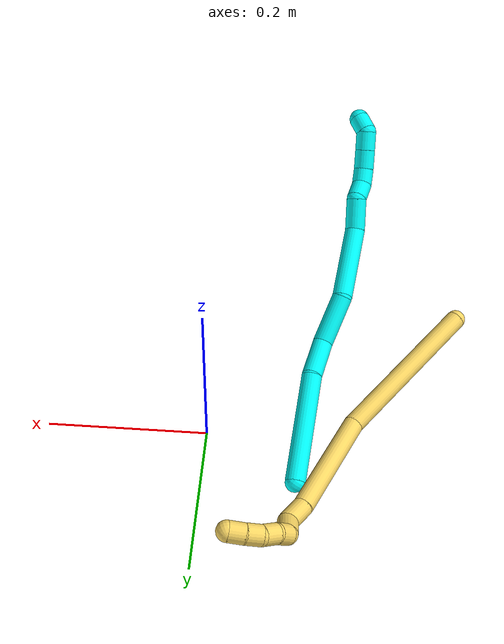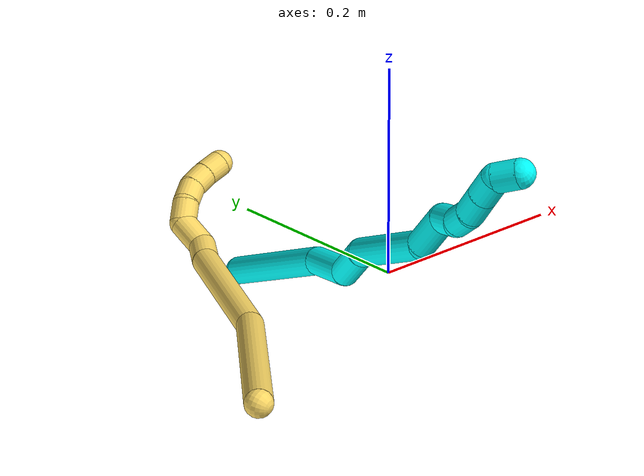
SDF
<sdf version="1.7">
 <world name="default">
  <model name="3">
   <static>0</static>
   <link name="3">
    <collision name="collision-cylinder-e_1_1_4">
     <pose>-0.001847 -0.041481 0.05357 0.658898 -0.027255 -0.009319</pose>
     <geometry><cylinder><radius>0.0125</radius><length>0.135555</length></cylinder></geometry>
     <surface>
      <friction><ode><mu>1.16</mu><mu2>1.16</mu2><slip1>0</slip1><slip2>0</slip2></ode></friction>
      <contact><ode><kp>1e+06</kp><kd>1</kd><max_vel>0</max_vel><min_depth>0.001</min_depth></ode></contact>
     </surface>
    </collision>
    <visual name="visual-cylinder-e_1_1_4">
     <pose>-0.001847 -0.041481 0.05357 0.658898 -0.027255 -0.009319</pose>
     <geometry><cylinder><radius>0.0125</radius><length>0.135555</length></cylinder></geometry>
     <material><ambient>0.003922 1 0.996078 1</ambient></material>
    </visual>
    <collision name="collision-cylinder-e_2_4_5">
     <pose>-0.01083 -0.098741 0.12593 0.698483 -0.283002 -0.103661</pose>
     <geometry><cylinder><radius>0.0125</radius><length>0.051106</length></cylinder></geometry>
     <surface>
      <friction><ode><mu>1.16</mu><mu2>1.16</mu2><slip1>0</slip1><slip2>0</slip2></ode></friction>
      <contact><ode><kp>1e+06</kp><kd>1</kd><max_vel>0</max_vel><min_depth>0.001</min_depth></ode></contact>
     </surface>
    </collision>
    <visual name="visual-cylinder-e_2_4_5">
     <pose>-0.01083 -0.098741 0.12593 0.698483 -0.283002 -0.103661</pose>
     <geometry><cylinder><radius>0.0125</radius><length>0.051106</length></cylinder></geometry>
     <material><ambient>0.003922 1 0.996078 1</ambient></material>
    </visual>
    <collision name="collision-cylinder-e_3_5_6">
     <pose>-0.01691 -0.123067 0.1751 0.274289 0.033425 0.004613</pose>
     <geometry><cylinder><radius>0.0125</radius><length>0.063153</length></cylinder></geometry>
     <surface>
      <friction><ode><mu>1.16</mu><mu2>1.16</mu2><slip1>0</slip1><slip2>0</slip2></ode></friction>
      <contact><ode><kp>1e+06</kp><kd>1</kd><max_vel>0</max_vel><min_depth>0.001</min_depth></ode></contact>
     </surface>
    </collision>
    <visual name="visual-cylinder-e_3_5_6">
     <pose>-0.01691 -0.123067 0.1751 0.274289 0.033425 0.004613</pose>
     <geometry><cylinder><radius>0.0125</radius><length>0.063153</length></cylinder></geometry>
     <material><ambient>0.003922 1 0.996078 1</ambient></material>
    </visual>
    <collision name="collision-cylinder-e_4_6_7">
     <pose>-0.017976 -0.159456 0.244047 0.625251 -0.044574 -0.014409</pose>
     <geometry><cylinder><radius>0.0125</radius><length>0.095228</length></cylinder></geometry>
     <surface>
      <friction><ode><mu>1.16</mu><mu2>1.16</mu2><slip1>0</slip1><slip2>0</slip2></ode></friction>
      <contact><ode><kp>1e+06</kp><kd>1</kd><max_vel>0</max_vel><min_depth>0.001</min_depth></ode></contact>
     </surface>
    </collision>
    <visual name="visual-cylinder-e_4_6_7">
     <pose>-0.017976 -0.159456 0.244047 0.625251 -0.044574 -0.014409</pose>
     <geometry><cylinder><radius>0.0125</radius><length>0.095228</length></cylinder></geometry>
     <material><ambient>0.003922 1 0.996078 1</ambient></material>
    </visual>
    <collision name="collision-cylinder-e_5_7_8">
     <pose>-0.012171 -0.194745 0.299594 0.413351 0.40402 0.085829</pose>
     <geometry><cylinder><radius>0.0125</radius><length>0.040329</length></cylinder></geometry>
     <surface>
      <friction><ode><mu>1.16</mu><mu2>1.16</mu2><slip1>0</slip1><slip2>0</slip2></ode></friction>
      <contact><ode><kp>1e+06</kp><kd>1</kd><max_vel>0</max_vel><min_depth>0.001</min_depth></ode></contact>
     </surface>
    </collision>
    <visual name="visual-cylinder-e_5_7_8">
     <pose>-0.012171 -0.194745 0.299594 0.413351 0.40402 0.085829</pose>
     <geometry><cylinder><radius>0.0125</radius><length>0.040329</length></cylinder></geometry>
     <material><ambient>0.003922 1 0.996078 1</ambient></material>
    </visual>
    <collision name="collision-cylinder-e_6_8_9">
     <pose>-0.007367 -0.209125 0.325832 0.642712 -0.263747 -0.088255</pose>
     <geometry><cylinder><radius>0.0125</radius><length>0.023961</length></cylinder></geometry>
     <surface>
      <friction><ode><mu>1.16</mu><mu2>1.16</mu2><slip1>0</slip1><slip2>0</slip2></ode></friction>
      <contact><ode><kp>1e+06</kp><kd>1</kd><max_vel>0</max_vel><min_depth>0.001</min_depth></ode></contact>
     </surface>
    </collision>
    <visual name="visual-cylinder-e_6_8_9">
     <pose>-0.007367 -0.209125 0.325832 0.642712 -0.263747 -0.088255</pose>
     <geometry><cylinder><radius>0.0125</radius><length>0.023961</length></cylinder></geometry>
     <material><ambient>0.003922 1 0.996078 1</ambient></material>
    </visual>
    <collision name="collision-cylinder-e_7_9_10">
     <pose>-0.008587 -0.221027 0.344099 0.504112 0.182943 0.047237</pose>
     <geometry><cylinder><radius>0.0125</radius><length>0.020925</length></cylinder></geometry>
     <surface>
      <friction><ode><mu>1.16</mu><mu2>1.16</mu2><slip1>0</slip1><slip2>0</slip2></ode></friction>
      <contact><ode><kp>1e+06</kp><kd>1</kd><max_vel>0</max_vel><min_depth>0.001</min_depth></ode></contact>
     </surface>
    </collision>
    <visual name="visual-cylinder-e_7_9_10">
     <pose>-0.008587 -0.221027 0.344099 0.504112 0.182943 0.047237</pose>
     <geometry><cylinder><radius>0.0125</radius><length>0.020925</length></cylinder></geometry>
     <material><ambient>0.003922 1 0.996078 1</ambient></material>
    </visual>
    <collision name="collision-cylinder-e_8_10_11">
     <pose>-0.00158 -0.229933 0.36364 0.357652 0.42605 0.078158</pose>
     <geometry><cylinder><radius>0.0125</radius><length>0.024698</length></cylinder></geometry>
     <surface>
      <friction><ode><mu>1.16</mu><mu2>1.16</mu2><slip1>0</slip1><slip2>0</slip2></ode></friction>
      <contact><ode><kp>1e+06</kp><kd>1</kd><max_vel>0</max_vel><min_depth>0.001</min_depth></ode></contact>
     </surface>
    </collision>
    <visual name="visual-cylinder-e_8_10_11">
     <pose>-0.00158 -0.229933 0.36364 0.357652 0.42605 0.078158</pose>
     <geometry><cylinder><radius>0.0125</radius><length>0.024698</length></cylinder></geometry>
     <material><ambient>0.003922 1 0.996078 1</ambient></material>
    </visual>
    <collision name="collision-cylinder-e_9_11_12">
     <pose>0.008396 -0.237723 0.384171 0.367899 0.426816 0.080595</pose>
     <geometry><cylinder><radius>0.0125</radius><length>0.023541</length></cylinder></geometry>
     <surface>
      <friction><ode><mu>1.16</mu><mu2>1.16</mu2><slip1>0</slip1><slip2>0</slip2></ode></friction>
      <contact><ode><kp>1e+06</kp><kd>1</kd><max_vel>0</max_vel><min_depth>0.001</min_depth></ode></contact>
     </surface>
    </collision>
    <visual name="visual-cylinder-e_9_11_12">
     <pose>0.008396 -0.237723 0.384171 0.367899 0.426816 0.080595</pose>
     <geometry><cylinder><radius>0.0125</radius><length>0.023541</length></cylinder></geometry>
     <material><ambient>0.003922 1 0.996078 1</ambient></material>
    </visual>
    <collision name="collision-cylinder-e_10_12_2">
     <pose>0.016266 -0.250957 0.398484 1.13958 0.282476 0.181686</pose>
     <geometry><cylinder><radius>0.0125</radius><length>0.021504</length></cylinder></geometry>
     <surface>
      <friction><ode><mu>1.16</mu><mu2>1.16</mu2><slip1>0</slip1><slip2>0</slip2></ode></friction>
      <contact><ode><kp>1e+06</kp><kd>1</kd><max_vel>0</max_vel><min_depth>0.001</min_depth></ode></contact>
     </surface>
    </collision>
    <visual name="visual-cylinder-e_10_12_2">
     <pose>0.016266 -0.250957 0.398484 1.13958 0.282476 0.181686</pose>
     <geometry><cylinder><radius>0.0125</radius><length>0.021504</length></cylinder></geometry>
     <material><ambient>0.003922 1 0.996078 1</ambient></material>
    </visual>
    <collision name="collision-sphere-2">
     <pose>0.019263 -0.260337 0.4028 0 -0 0</pose>
     <geometry><sphere><radius>0.0125</radius></sphere></geometry>
     <surface>
      <friction><ode><mu>1.16</mu><mu2>1.16</mu2><slip1>0</slip1><slip2>0</slip2></ode></friction>
      <contact><ode><kp>1e+06</kp><kd>1</kd><max_vel>0</max_vel><min_depth>0.001</min_depth></ode></contact>
     </surface>
    </collision>
    <visual name="visual-sphere-2">
     <pose>0.019263 -0.260337 0.4028 0 -0 0</pose>
     <geometry><sphere><radius>0.0125</radius></sphere></geometry>
     <material><ambient>0.003922 1 0.996078 1</ambient></material>
    </visual>
    <collision name="collision-sphere-12">
     <pose>0.013269 -0.241576 0.394169 0 -0 0</pose>
     <geometry><sphere><radius>0.0125</radius></sphere></geometry>
     <surface>
      <friction><ode><mu>1.16</mu><mu2>1.16</mu2><slip1>0</slip1><slip2>0</slip2></ode></friction>
      <contact><ode><kp>1e+06</kp><kd>1</kd><max_vel>0</max_vel><min_depth>0.001</min_depth></ode></contact>
     </surface>
    </collision>
    <visual name="visual-sphere-12">
     <pose>0.013269 -0.241576 0.394169 0 -0 0</pose>
     <geometry><sphere><radius>0.0125</radius></sphere></geometry>
     <material><ambient>0.003922 1 0.996078 1</ambient></material>
    </visual>
    <collision name="collision-sphere-11">
     <pose>0.003523 -0.233869 0.374173 0 -0 0</pose>
     <geometry><sphere><radius>0.0125</radius></sphere></geometry>
     <surface>
      <friction><ode><mu>1.16</mu><mu2>1.16</mu2><slip1>0</slip1><slip2>0</slip2></ode></friction>
      <contact><ode><kp>1e+06</kp><kd>1</kd><max_vel>0</max_vel><min_depth>0.001</min_depth></ode></contact>
     </surface>
    </collision>
    <visual name="visual-sphere-11">
     <pose>0.003523 -0.233869 0.374173 0 -0 0</pose>
     <geometry><sphere><radius>0.0125</radius></sphere></geometry>
     <material><ambient>0.003922 1 0.996078 1</ambient></material>
    </visual>
    <collision name="collision-sphere-10">
     <pose>-0.006683 -0.225996 0.353107 0 -0 0</pose>
     <geometry><sphere><radius>0.0125</radius></sphere></geometry>
     <surface>
      <friction><ode><mu>1.16</mu><mu2>1.16</mu2><slip1>0</slip1><slip2>0</slip2></ode></friction>
      <contact><ode><kp>1e+06</kp><kd>1</kd><max_vel>0</max_vel><min_depth>0.001</min_depth></ode></contact>
     </surface>
    </collision>
    <visual name="visual-sphere-10">
     <pose>-0.006683 -0.225996 0.353107 0 -0 0</pose>
     <geometry><sphere><radius>0.0125</radius></sphere></geometry>
     <material><ambient>0.003922 1 0.996078 1</ambient></material>
    </visual>
    <collision name="collision-sphere-9">
     <pose>-0.01049 -0.216057 0.335091 0 -0 0</pose>
     <geometry><sphere><radius>0.0125</radius></sphere></geometry>
     <surface>
      <friction><ode><mu>1.16</mu><mu2>1.16</mu2><slip1>0</slip1><slip2>0</slip2></ode></friction>
      <contact><ode><kp>1e+06</kp><kd>1</kd><max_vel>0</max_vel><min_depth>0.001</min_depth></ode></contact>
     </surface>
    </collision>
    <visual name="visual-sphere-9">
     <pose>-0.01049 -0.216057 0.335091 0 -0 0</pose>
     <geometry><sphere><radius>0.0125</radius></sphere></geometry>
     <material><ambient>0.003922 1 0.996078 1</ambient></material>
    </visual>
    <collision name="collision-sphere-4">
     <pose>-0.003694 -0.082962 0.107139 0 -0 0</pose>
     <geometry><sphere><radius>0.0125</radius></sphere></geometry>
     <surface>
      <friction><ode><mu>1.16</mu><mu2>1.16</mu2><slip1>0</slip1><slip2>0</slip2></ode></friction>
      <contact><ode><kp>1e+06</kp><kd>1</kd><max_vel>0</max_vel><min_depth>0.001</min_depth></ode></contact>
     </surface>
    </collision>
    <visual name="visual-sphere-4">
     <pose>-0.003694 -0.082962 0.107139 0 -0 0</pose>
     <geometry><sphere><radius>0.0125</radius></sphere></geometry>
     <material><ambient>0.003922 1 0.996078 1</ambient></material>
    </visual>
    <collision name="collision-sphere-1">
     <geometry><sphere><radius>0.0125</radius></sphere></geometry>
     <surface>
      <friction><ode><mu>1.16</mu><mu2>1.16</mu2><slip1>0</slip1><slip2>0</slip2></ode></friction>
      <contact><ode><kp>1e+06</kp><kd>1</kd><max_vel>0</max_vel><min_depth>0.001</min_depth></ode></contact>
     </surface>
    </collision>
    <visual name="visual-sphere-1">
     <geometry><sphere><radius>0.0125</radius></sphere></geometry>
     <material><ambient>0.003922 1 0.996078 1</ambient></material>
    </visual>
    <collision name="collision-sphere-8">
     <pose>-0.004244 -0.202193 0.316574 0 -0 0</pose>
     <geometry><sphere><radius>0.0125</radius></sphere></geometry>
     <surface>
      <friction><ode><mu>1.16</mu><mu2>1.16</mu2><slip1>0</slip1><slip2>0</slip2></ode></friction>
      <contact><ode><kp>1e+06</kp><kd>1</kd><max_vel>0</max_vel><min_depth>0.001</min_depth></ode></contact>
     </surface>
    </collision>
    <visual name="visual-sphere-8">
     <pose>-0.004244 -0.202193 0.316574 0 -0 0</pose>
     <geometry><sphere><radius>0.0125</radius></sphere></geometry>
     <material><ambient>0.003922 1 0.996078 1</ambient></material>
    </visual>
    <collision name="collision-sphere-5">
     <pose>-0.017965 -0.114519 0.144721 0 -0 0</pose>
     <geometry><sphere><radius>0.0125</radius></sphere></geometry>
     <surface>
      <friction><ode><mu>1.16</mu><mu2>1.16</mu2><slip1>0</slip1><slip2>0</slip2></ode></friction>
      <contact><ode><kp>1e+06</kp><kd>1</kd><max_vel>0</max_vel><min_depth>0.001</min_depth></ode></contact>
     </surface>
    </collision>
    <visual name="visual-sphere-5">
     <pose>-0.017965 -0.114519 0.144721 0 -0 0</pose>
     <geometry><sphere><radius>0.0125</radius></sphere></geometry>
     <material><ambient>0.003922 1 0.996078 1</ambient></material>
    </visual>
    <collision name="collision-sphere-6">
     <pose>-0.015855 -0.131616 0.205479 0 -0 0</pose>
     <geometry><sphere><radius>0.0125</radius></sphere></geometry>
     <surface>
      <friction><ode><mu>1.16</mu><mu2>1.16</mu2><slip1>0</slip1><slip2>0</slip2></ode></friction>
      <contact><ode><kp>1e+06</kp><kd>1</kd><max_vel>0</max_vel><min_depth>0.001</min_depth></ode></contact>
     </surface>
    </collision>
    <visual name="visual-sphere-6">
     <pose>-0.015855 -0.131616 0.205479 0 -0 0</pose>
     <geometry><sphere><radius>0.0125</radius></sphere></geometry>
     <material><ambient>0.003922 1 0.996078 1</ambient></material>
    </visual>
    <collision name="collision-sphere-7">
     <pose>-0.020098 -0.187297 0.282615 0 -0 0</pose>
     <geometry><sphere><radius>0.0125</radius></sphere></geometry>
     <surface>
      <friction><ode><mu>1.16</mu><mu2>1.16</mu2><slip1>0</slip1><slip2>0</slip2></ode></friction>
      <contact><ode><kp>1e+06</kp><kd>1</kd><max_vel>0</max_vel><min_depth>0.001</min_depth></ode></contact>
     </surface>
    </collision>
    <visual name="visual-sphere-7">
     <pose>-0.020098 -0.187297 0.282615 0 -0 0</pose>
     <geometry><sphere><radius>0.0125</radius></sphere></geometry>
     <material><ambient>0.003922 1 0.996078 1</ambient></material>
    </visual>
    <inertial>
     <pose>-0.007844 -0.135575 0.203358 0 -0 0</pose>
     <mass>0.5</mass>
     <inertia>
      <ixx>0.000338</ixx>
      <ixy>0</ixy>
      <ixz>0</ixz>
      <iyy>0.000253</iyy>
      <iyz>0</iyz>
      <izz>0.000235</izz>
     </inertia>
    </inertial>
   </link>
   <pose>-0.113922 0.077191 0.011498 0.257957 -0.800215 0.412114</pose>
  </model>
  <model name="5">
   <static>0</static>
   <link name="5">
    <collision name="collision-cylinder-e_1_1_4">
     <pose>0.033263 0.084635 -0.057526 -2.16777 0.31427 -0.581568</pose>
     <geometry><cylinder><radius>0.0125</radius><length>0.21521</length></cylinder></geometry>
     <surface>
      <friction><ode><mu>1.16</mu><mu2>1.16</mu2><slip1>0</slip1><slip2>0</slip2></ode></friction>
      <contact><ode><kp>1e+06</kp><kd>1</kd><max_vel>0</max_vel><min_depth>0.001</min_depth></ode></contact>
     </surface>
    </collision>
    <visual name="visual-cylinder-e_1_1_4">
     <pose>0.033263 0.084635 -0.057526 -2.16777 0.31427 -0.581568</pose>
     <geometry><cylinder><radius>0.0125</radius><length>0.21521</length></cylinder></geometry>
     <material><ambient>1 0.858824 0.4 1</ambient></material>
    </visual>
    <collision name="collision-cylinder-e_2_4_5">
     <pose>0.07979 0.214255 -0.168736 -2.44413 0.187157 -0.505227</pose>
     <geometry><cylinder><radius>0.0125</radius><length>0.142567</length></cylinder></geometry>
     <surface>
      <friction><ode><mu>1.16</mu><mu2>1.16</mu2><slip1>0</slip1><slip2>0</slip2></ode></friction>
      <contact><ode><kp>1e+06</kp><kd>1</kd><max_vel>0</max_vel><min_depth>0.001</min_depth></ode></contact>
     </surface>
    </collision>
    <visual name="visual-cylinder-e_2_4_5">
     <pose>0.07979 0.214255 -0.168736 -2.44413 0.187157 -0.505227</pose>
     <geometry><cylinder><radius>0.0125</radius><length>0.142567</length></cylinder></geometry>
     <material><ambient>1 0.858824 0.4 1</ambient></material>
    </visual>
    <collision name="collision-cylinder-e_3_5_6">
     <pose>0.094635 0.27071 -0.23227 -2.28036 0.104209 -0.22609</pose>
     <geometry><cylinder><radius>0.0125</radius><length>0.030407</length></cylinder></geometry>
     <surface>
      <friction><ode><mu>1.16</mu><mu2>1.16</mu2><slip1>0</slip1><slip2>0</slip2></ode></friction>
      <contact><ode><kp>1e+06</kp><kd>1</kd><max_vel>0</max_vel><min_depth>0.001</min_depth></ode></contact>
     </surface>
    </collision>
    <visual name="visual-cylinder-e_3_5_6">
     <pose>0.094635 0.27071 -0.23227 -2.28036 0.104209 -0.22609</pose>
     <geometry><cylinder><radius>0.0125</radius><length>0.030407</length></cylinder></geometry>
     <material><ambient>1 0.858824 0.4 1</ambient></material>
    </visual>
    <collision name="collision-cylinder-e_4_6_7">
     <pose>0.092164 0.285967 -0.256208 -2.87909 -0.270974 1.60294</pose>
     <geometry><cylinder><radius>0.0125</radius><length>0.030276</length></cylinder></geometry>
     <surface>
      <friction><ode><mu>1.16</mu><mu2>1.16</mu2><slip1>0</slip1><slip2>0</slip2></ode></friction>
      <contact><ode><kp>1e+06</kp><kd>1</kd><max_vel>0</max_vel><min_depth>0.001</min_depth></ode></contact>
     </surface>
    </collision>
    <visual name="visual-cylinder-e_4_6_7">
     <pose>0.092164 0.285967 -0.256208 -2.87909 -0.270974 1.60294</pose>
     <geometry><cylinder><radius>0.0125</radius><length>0.030276</length></cylinder></geometry>
     <material><ambient>1 0.858824 0.4 1</ambient></material>
    </visual>
    <collision name="collision-cylinder-e_5_7_8">
     <pose>0.082228 0.297364 -0.274622 -2.08775 -0.591672 0.965119</pose>
     <geometry><cylinder><radius>0.0125</radius><length>0.021098</length></cylinder></geometry>
     <surface>
      <friction><ode><mu>1.16</mu><mu2>1.16</mu2><slip1>0</slip1><slip2>0</slip2></ode></friction>
      <contact><ode><kp>1e+06</kp><kd>1</kd><max_vel>0</max_vel><min_depth>0.001</min_depth></ode></contact>
     </surface>
    </collision>
    <visual name="visual-cylinder-e_5_7_8">
     <pose>0.082228 0.297364 -0.274622 -2.08775 -0.591672 0.965119</pose>
     <geometry><cylinder><radius>0.0125</radius><length>0.021098</length></cylinder></geometry>
     <material><ambient>1 0.858824 0.4 1</ambient></material>
    </visual>
    <collision name="collision-cylinder-e_6_8_9">
     <pose>0.073281 0.314061 -0.282231 -1.91746 -0.307161 0.434077</pose>
     <geometry><cylinder><radius>0.0125</radius><length>0.02027</length></cylinder></geometry>
     <surface>
      <friction><ode><mu>1.16</mu><mu2>1.16</mu2><slip1>0</slip1><slip2>0</slip2></ode></friction>
      <contact><ode><kp>1e+06</kp><kd>1</kd><max_vel>0</max_vel><min_depth>0.001</min_depth></ode></contact>
     </surface>
    </collision>
    <visual name="visual-cylinder-e_6_8_9">
     <pose>0.073281 0.314061 -0.282231 -1.91746 -0.307161 0.434077</pose>
     <geometry><cylinder><radius>0.0125</radius><length>0.02027</length></cylinder></geometry>
     <material><ambient>1 0.858824 0.4 1</ambient></material>
    </visual>
    <collision name="collision-cylinder-e_7_9_10">
     <pose>0.067616 0.332806 -0.285299 -1.54863 -0.262932 0.25723</pose>
     <geometry><cylinder><radius>0.0125</radius><length>0.020011</length></cylinder></geometry>
     <surface>
      <friction><ode><mu>1.16</mu><mu2>1.16</mu2><slip1>0</slip1><slip2>0</slip2></ode></friction>
      <contact><ode><kp>1e+06</kp><kd>1</kd><max_vel>0</max_vel><min_depth>0.001</min_depth></ode></contact>
     </surface>
    </collision>
    <visual name="visual-cylinder-e_7_9_10">
     <pose>0.067616 0.332806 -0.285299 -1.54863 -0.262932 0.25723</pose>
     <geometry><cylinder><radius>0.0125</radius><length>0.020011</length></cylinder></geometry>
     <material><ambient>1 0.858824 0.4 1</ambient></material>
    </visual>
    <collision name="collision-cylinder-e_8_10_2">
     <pose>0.062694 0.352179 -0.283718 -1.43099 -0.232348 0.202162</pose>
     <geometry><cylinder><radius>0.0125</radius><length>0.020161</length></cylinder></geometry>
     <surface>
      <friction><ode><mu>1.16</mu><mu2>1.16</mu2><slip1>0</slip1><slip2>0</slip2></ode></friction>
      <contact><ode><kp>1e+06</kp><kd>1</kd><max_vel>0</max_vel><min_depth>0.001</min_depth></ode></contact>
     </surface>
    </collision>
    <visual name="visual-cylinder-e_8_10_2">
     <pose>0.062694 0.352179 -0.283718 -1.43099 -0.232348 0.202162</pose>
     <geometry><cylinder><radius>0.0125</radius><length>0.020161</length></cylinder></geometry>
     <material><ambient>1 0.858824 0.4 1</ambient></material>
    </visual>
    <collision name="collision-sphere-2">
     <pose>0.060373 0.361892 -0.282351 0 -0 0</pose>
     <geometry><sphere><radius>0.0125</radius></sphere></geometry>
     <surface>
      <friction><ode><mu>1.16</mu><mu2>1.16</mu2><slip1>0</slip1><slip2>0</slip2></ode></friction>
      <contact><ode><kp>1e+06</kp><kd>1</kd><max_vel>0</max_vel><min_depth>0.001</min_depth></ode></contact>
     </surface>
    </collision>
    <visual name="visual-sphere-2">
     <pose>0.060373 0.361892 -0.282351 0 -0 0</pose>
     <geometry><sphere><radius>0.0125</radius></sphere></geometry>
     <material><ambient>1 0.858824 0.4 1</ambient></material>
    </visual>
    <collision name="collision-sphere-10">
     <pose>0.065015 0.342465 -0.285085 0 -0 0</pose>
     <geometry><sphere><radius>0.0125</radius></sphere></geometry>
     <surface>
      <friction><ode><mu>1.16</mu><mu2>1.16</mu2><slip1>0</slip1><slip2>0</slip2></ode></friction>
      <contact><ode><kp>1e+06</kp><kd>1</kd><max_vel>0</max_vel><min_depth>0.001</min_depth></ode></contact>
     </surface>
    </collision>
    <visual name="visual-sphere-10">
     <pose>0.065015 0.342465 -0.285085 0 -0 0</pose>
     <geometry><sphere><radius>0.0125</radius></sphere></geometry>
     <material><ambient>1 0.858824 0.4 1</ambient></material>
    </visual>
    <collision name="collision-sphere-9">
     <pose>0.070216 0.323147 -0.285513 0 -0 0</pose>
     <geometry><sphere><radius>0.0125</radius></sphere></geometry>
     <surface>
      <friction><ode><mu>1.16</mu><mu2>1.16</mu2><slip1>0</slip1><slip2>0</slip2></ode></friction>
      <contact><ode><kp>1e+06</kp><kd>1</kd><max_vel>0</max_vel><min_depth>0.001</min_depth></ode></contact>
     </surface>
    </collision>
    <visual name="visual-sphere-9">
     <pose>0.070216 0.323147 -0.285513 0 -0 0</pose>
     <geometry><sphere><radius>0.0125</radius></sphere></geometry>
     <material><ambient>1 0.858824 0.4 1</ambient></material>
    </visual>
    <collision name="collision-sphere-4">
     <pose>0.066526 0.169271 -0.115053 0 -0 0</pose>
     <geometry><sphere><radius>0.0125</radius></sphere></geometry>
     <surface>
      <friction><ode><mu>1.16</mu><mu2>1.16</mu2><slip1>0</slip1><slip2>0</slip2></ode></friction>
      <contact><ode><kp>1e+06</kp><kd>1</kd><max_vel>0</max_vel><min_depth>0.001</min_depth></ode></contact>
     </surface>
    </collision>
    <visual name="visual-sphere-4">
     <pose>0.066526 0.169271 -0.115053 0 -0 0</pose>
     <geometry><sphere><radius>0.0125</radius></sphere></geometry>
     <material><ambient>1 0.858824 0.4 1</ambient></material>
    </visual>
    <collision name="collision-sphere-1">
     <geometry><sphere><radius>0.0125</radius></sphere></geometry>
     <surface>
      <friction><ode><mu>1.16</mu><mu2>1.16</mu2><slip1>0</slip1><slip2>0</slip2></ode></friction>
      <contact><ode><kp>1e+06</kp><kd>1</kd><max_vel>0</max_vel><min_depth>0.001</min_depth></ode></contact>
     </surface>
    </collision>
    <visual name="visual-sphere-1">
     <geometry><sphere><radius>0.0125</radius></sphere></geometry>
     <material><ambient>1 0.858824 0.4 1</ambient></material>
    </visual>
    <collision name="collision-sphere-8">
     <pose>0.076345 0.304975 -0.278949 0 -0 0</pose>
     <geometry><sphere><radius>0.0125</radius></sphere></geometry>
     <surface>
      <friction><ode><mu>1.16</mu><mu2>1.16</mu2><slip1>0</slip1><slip2>0</slip2></ode></friction>
      <contact><ode><kp>1e+06</kp><kd>1</kd><max_vel>0</max_vel><min_depth>0.001</min_depth></ode></contact>
     </surface>
    </collision>
    <visual name="visual-sphere-8">
     <pose>0.076345 0.304975 -0.278949 0 -0 0</pose>
     <geometry><sphere><radius>0.0125</radius></sphere></geometry>
     <material><ambient>1 0.858824 0.4 1</ambient></material>
    </visual>
    <collision name="collision-sphere-5">
     <pose>0.093053 0.259239 -0.222419 0 -0 0</pose>
     <geometry><sphere><radius>0.0125</radius></sphere></geometry>
     <surface>
      <friction><ode><mu>1.16</mu><mu2>1.16</mu2><slip1>0</slip1><slip2>0</slip2></ode></friction>
      <contact><ode><kp>1e+06</kp><kd>1</kd><max_vel>0</max_vel><min_depth>0.001</min_depth></ode></contact>
     </surface>
    </collision>
    <visual name="visual-sphere-5">
     <pose>0.093053 0.259239 -0.222419 0 -0 0</pose>
     <geometry><sphere><radius>0.0125</radius></sphere></geometry>
     <material><ambient>1 0.858824 0.4 1</ambient></material>
    </visual>
    <collision name="collision-sphere-6">
     <pose>0.096216 0.282182 -0.242122 0 -0 0</pose>
     <geometry><sphere><radius>0.0125</radius></sphere></geometry>
     <surface>
      <friction><ode><mu>1.16</mu><mu2>1.16</mu2><slip1>0</slip1><slip2>0</slip2></ode></friction>
      <contact><ode><kp>1e+06</kp><kd>1</kd><max_vel>0</max_vel><min_depth>0.001</min_depth></ode></contact>
     </surface>
    </collision>
    <visual name="visual-sphere-6">
     <pose>0.096216 0.282182 -0.242122 0 -0 0</pose>
     <geometry><sphere><radius>0.0125</radius></sphere></geometry>
     <material><ambient>1 0.858824 0.4 1</ambient></material>
    </visual>
    <collision name="collision-sphere-7">
     <pose>0.088112 0.289752 -0.270294 0 -0 0</pose>
     <geometry><sphere><radius>0.0125</radius></sphere></geometry>
     <surface>
      <friction><ode><mu>1.16</mu><mu2>1.16</mu2><slip1>0</slip1><slip2>0</slip2></ode></friction>
      <contact><ode><kp>1e+06</kp><kd>1</kd><max_vel>0</max_vel><min_depth>0.001</min_depth></ode></contact>
     </surface>
    </collision>
    <visual name="visual-sphere-7">
     <pose>0.088112 0.289752 -0.270294 0 -0 0</pose>
     <geometry><sphere><radius>0.0125</radius></sphere></geometry>
     <material><ambient>1 0.858824 0.4 1</ambient></material>
    </visual>
    <inertial>
     <pose>0.060078 0.184098 -0.1484 0 -0 0</pose>
     <mass>0.5</mass>
     <inertia>
      <ixx>0.000341</ixx>
      <ixy>0</ixy>
      <ixz>0</ixz>
      <iyy>-0.000952</iyy>
      <iyz>0</iyz>
      <izz>-0.001149</izz>
     </inertia>
    </inertial>
   </link>
   <pose>-0.314695 -0.18473 0.042755 2.79907 1.36442 1.50277</pose>
  </model>
 </world>
</sdf>
